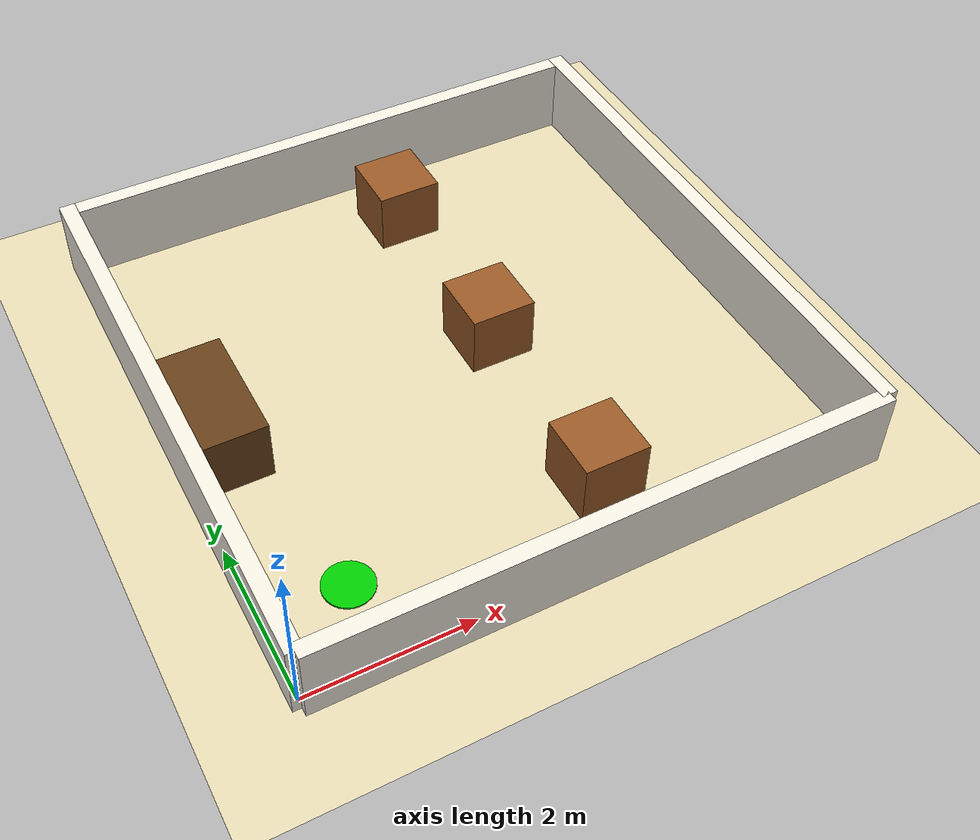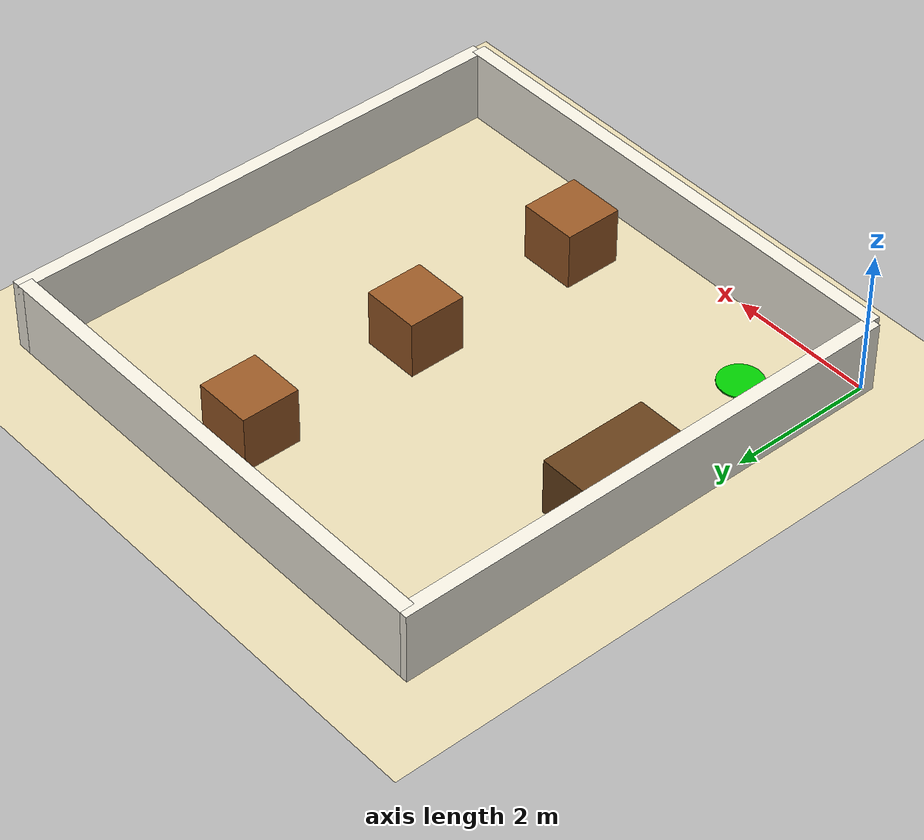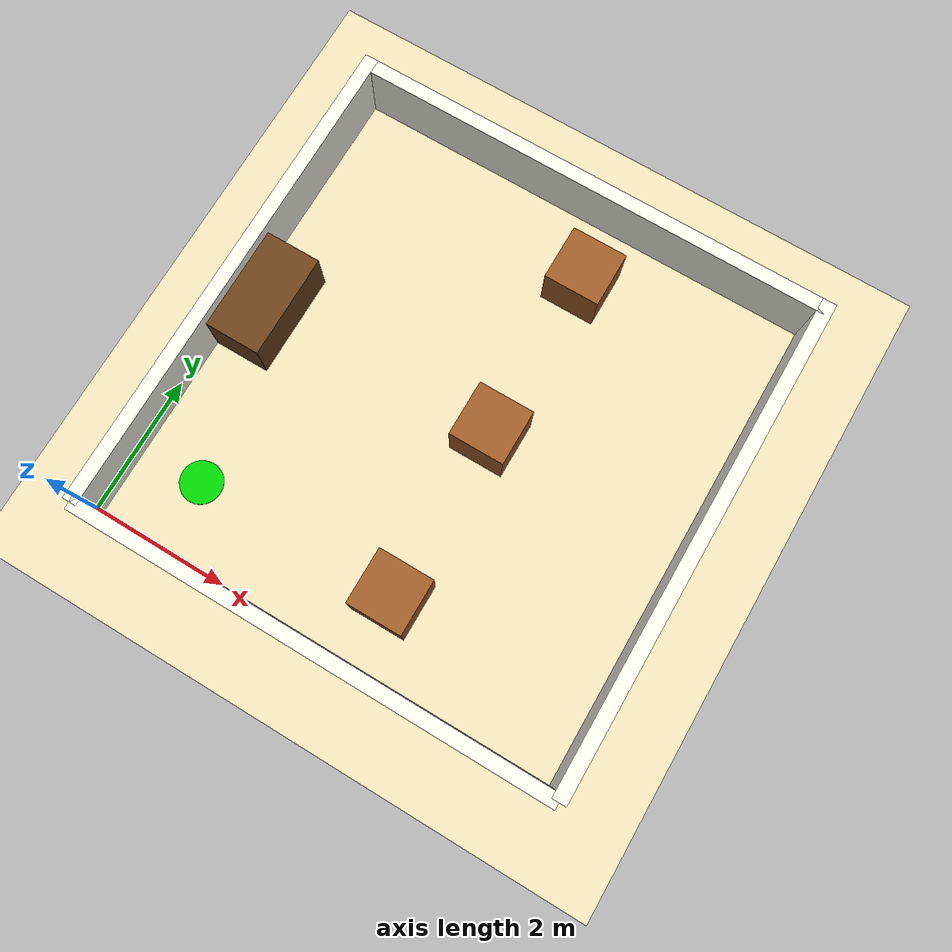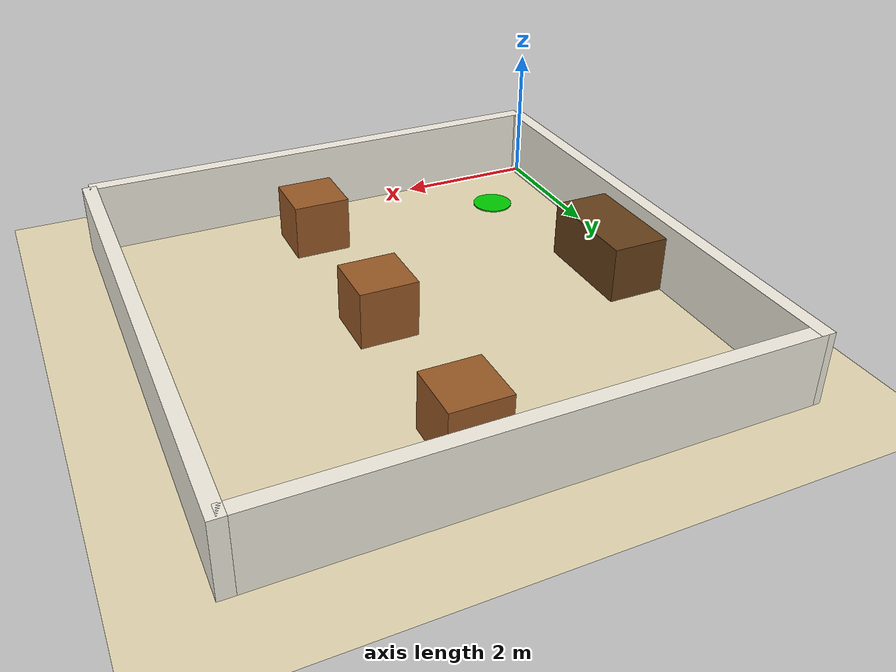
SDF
<?xml version="1.0"?>
<sdf version="1.6">
  <world name="cafe_world">

    <physics name="1ms" type="ignored">
      <max_step_size>0.001</max_step_size>
      <real_time_factor>1.0</real_time_factor>
    </physics>

    <!-- Required plugins -->
    <plugin filename="gz-sim-physics-system" name="gz::sim::systems::Physics"/>
    <plugin filename="gz-sim-user-commands-system" name="gz::sim::systems::UserCommands"/>
    <plugin filename="gz-sim-scene-broadcaster-system" name="gz::sim::systems::SceneBroadcaster"/>
    <plugin filename="gz-sim-sensors-system" name="gz::sim::systems::Sensors">
      <render_engine>ogre2</render_engine>
    </plugin>
    <plugin filename="gz-sim-imu-system" name="gz::sim::systems::Imu"/>

    <light type="directional" name="sun">
      <cast_shadows>true</cast_shadows>
      <pose>0 0 10 0 0 0</pose>
      <diffuse>1.0 0.95 0.85 1</diffuse>
      <specular>0.5 0.5 0.5 1</specular>
    </light>

    <!-- Beige floor -->
    <model name="ground_plane">
      <static>true</static>
      <link name="link">
        <collision name="collision">
          <geometry><plane><normal>0 0 1</normal><size>20 20</size></plane></geometry>
        </collision>
        <visual name="visual">
          <geometry><plane><normal>0 0 1</normal><size>20 20</size></plane></geometry>
          <material><ambient>0.9 0.85 0.7 1</ambient><diffuse>0.9 0.85 0.7 1</diffuse></material>
        </visual>
      </link>
    </model>

    <!-- North Wall -->
    <model name="wall_north">
      <static>true</static><pose>3.5 7.0 0.5 0 0 0</pose>
      <link name="link">
        <collision name="col"><geometry><box><size>7.0 0.2 1.0</size></box></geometry></collision>
        <visual name="vis"><geometry><box><size>7.0 0.2 1.0</size></box></geometry>
          <material><ambient>0.95 0.93 0.88 1</ambient><diffuse>0.95 0.93 0.88 1</diffuse></material></visual>
      </link>
    </model>

    <!-- South Wall -->
    <model name="wall_south">
      <static>true</static><pose>3.5 -0.1 0.5 0 0 0</pose>
      <link name="link">
        <collision name="col"><geometry><box><size>7.0 0.2 1.0</size></box></geometry></collision>
        <visual name="vis"><geometry><box><size>7.0 0.2 1.0</size></box></geometry>
          <material><ambient>0.95 0.93 0.88 1</ambient><diffuse>0.95 0.93 0.88 1</diffuse></material></visual>
      </link>
    </model>

    <!-- East Wall -->
    <model name="wall_east">
      <static>true</static><pose>7.0 3.5 0.5 0 0 1.5707</pose>
      <link name="link">
        <collision name="col"><geometry><box><size>7.2 0.2 1.0</size></box></geometry></collision>
        <visual name="vis"><geometry><box><size>7.2 0.2 1.0</size></box></geometry>
          <material><ambient>0.95 0.93 0.88 1</ambient><diffuse>0.95 0.93 0.88 1</diffuse></material></visual>
      </link>
    </model>

    <!-- West Wall -->
    <model name="wall_west">
      <static>true</static><pose>0.0 3.5 0.5 0 0 1.5707</pose>
      <link name="link">
        <collision name="col"><geometry><box><size>7.2 0.2 1.0</size></box></geometry></collision>
        <visual name="vis"><geometry><box><size>7.2 0.2 1.0</size></box></geometry>
          <material><ambient>0.95 0.93 0.88 1</ambient><diffuse>0.95 0.93 0.88 1</diffuse></material></visual>
      </link>
    </model>

    <!-- Kitchen Counter -->
    <model name="kitchen_counter">
      <static>true</static><pose>0.5 3.5 0.4 0 0 0</pose>
      <link name="link">
        <collision name="col"><geometry><box><size>0.8 1.5 0.8</size></box></geometry></collision>
        <visual name="vis"><geometry><box><size>0.8 1.5 0.8</size></box></geometry>
          <material><ambient>0.4 0.25 0.1 1</ambient><diffuse>0.4 0.25 0.1 1</diffuse></material></visual>
      </link>
    </model>

    <!-- Table 1 -->
    <model name="table1">
      <static>true</static><pose>4.0 1.0 0.4 0 0 0</pose>
      <link name="link">
        <collision name="col"><geometry><box><size>0.8 0.8 0.8</size></box></geometry></collision>
        <visual name="vis"><geometry><box><size>0.8 0.8 0.8</size></box></geometry>
          <material><ambient>0.6 0.35 0.15 1</ambient><diffuse>0.6 0.35 0.15 1</diffuse></material></visual>
      </link>
    </model>

    <!-- Table 2 -->
    <model name="table2">
      <static>true</static><pose>4.0 3.5 0.4 0 0 0</pose>
      <link name="link">
        <collision name="col"><geometry><box><size>0.8 0.8 0.8</size></box></geometry></collision>
        <visual name="vis"><geometry><box><size>0.8 0.8 0.8</size></box></geometry>
          <material><ambient>0.6 0.35 0.15 1</ambient><diffuse>0.6 0.35 0.15 1</diffuse></material></visual>
      </link>
    </model>

    <!-- Table 3 -->
    <model name="table3">
      <static>true</static><pose>4.0 6.0 0.4 0 0 0</pose>
      <link name="link">
        <collision name="col"><geometry><box><size>0.8 0.8 0.8</size></box></geometry></collision>
        <visual name="vis"><geometry><box><size>0.8 0.8 0.8</size></box></geometry>
          <material><ambient>0.6 0.35 0.15 1</ambient><diffuse>0.6 0.35 0.15 1</diffuse></material></visual>
      </link>
    </model>

    <!-- Home Position Marker - Green Circle -->
    <model name="home_marker">
      <static>true</static><pose>1.0 1.0 0.01 0 0 0</pose>
      <link name="link">
        <visual name="vis">
          <geometry><cylinder><radius>0.3</radius><length>0.02</length></cylinder></geometry>
          <material><ambient>0.0 0.8 0.0 1</ambient><diffuse>0.0 0.8 0.0 1</diffuse></material>
        </visual>
      </link>
    </model>

  </world>
</sdf>
